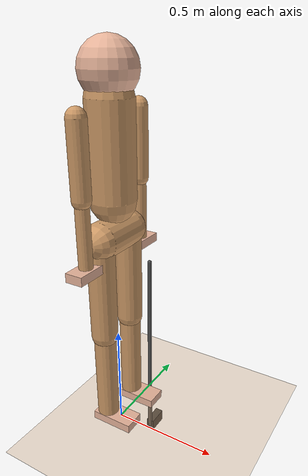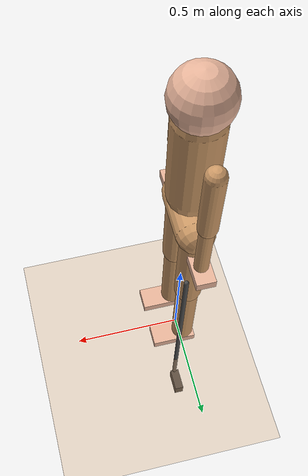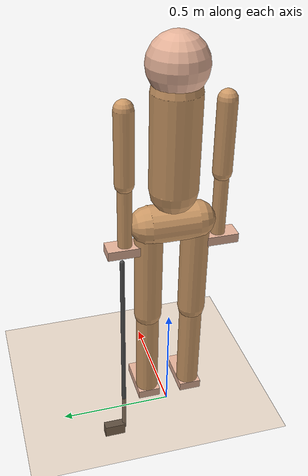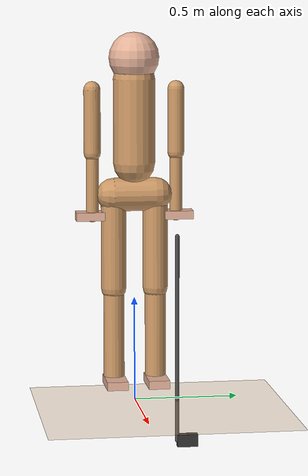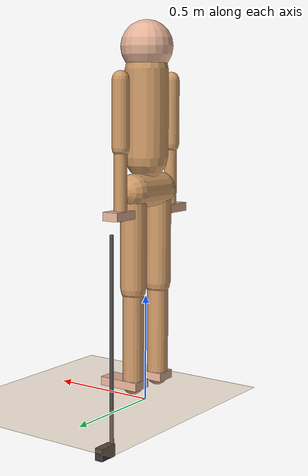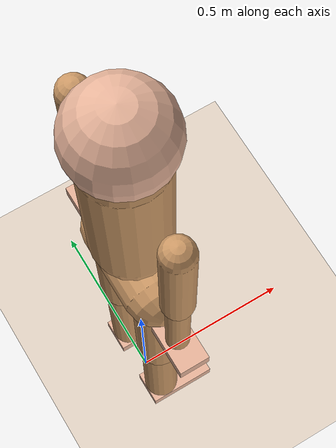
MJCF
<mujoco model="humanoid_golf">

  <compiler angle="degree" inertiafromgeom="true"/>

  <option timestep="0.005" iterations="50" solver="Newton" gravity="0 0 -9.81"/>

  <default>
    <joint damping="0.5" armature="0.01"/>
    <geom condim="3" friction="1.0 0.005 0.0001" rgba="0.8 0.6 0.4 1"/>
    <motor ctrllimited="true" ctrlrange="-1 1"/>
  </default>

  <asset>
    <texture name="grid" type="2d" builtin="checker" width="512" height="512" rgb1="0.2 0.3 0.2" rgb2="0.1 0.2 0.1"/>
    <material name="grid" texture="grid" texrepeat="4 4" texuniform="true" reflectance="0.2"/>
    <material name="floor_mat" rgba="0.3 0.5 0.3 1" reflectance="0.1"/>
  </asset>

  <worldbody>
    <!-- Ground plane -->
    <geom name="floor" type="plane" size="10 10 0.1" material="floor_mat"/>

    <light pos="0 0 3" dir="0 0 -1" diffuse="0.8 0.8 0.8" specular="0.2 0.2 0.2"/>

    <!-- Humanoid body -->
    <body name="pelvis" pos="0 0 1.0">
      <freejoint/>
      <geom name="pelvis_geom" type="capsule" fromto="0 -0.1 0 0 0.1 0" size="0.08"/>
      <inertial pos="0 0 0" mass="10" diaginertia="0.1 0.1 0.05"/>

      <!-- Torso -->
      <body name="torso" pos="0 0 0.15">
        <joint name="lumbar_rotation" type="hinge" axis="0 0 1" range="-45 45"/>
        <joint name="lumbar_flexion" type="hinge" axis="0 1 0" range="-30 60"/>
        <geom name="torso_geom" type="capsule" fromto="0 0 0 0 0 0.4" size="0.1"/>
        <inertial pos="0 0 0.2" mass="15" diaginertia="0.2 0.2 0.1"/>

        <!-- Head -->
        <body name="head" pos="0 0 0.5">
          <joint name="neck_flex" type="hinge" axis="0 1 0" range="-30 30"/>
          <geom name="head_geom" type="sphere" size="0.12" rgba="0.9 0.7 0.6 1"/>
          <inertial pos="0 0 0" mass="5" diaginertia="0.05 0.05 0.05"/>
        </body>

        <!-- Left shoulder and arm -->
        <body name="left_shoulder" pos="0 0.2 0.35">
          <joint name="left_shoulder_flex" type="hinge" axis="0 1 0" range="-60 180"/>
          <joint name="left_shoulder_abd" type="hinge" axis="1 0 0" range="0 180"/>
          <joint name="left_shoulder_rot" type="hinge" axis="0 0 1" range="-90 90"/>
          <geom name="left_upper_arm" type="capsule" fromto="0 0 0 0 0 -0.3" size="0.04"/>
          <inertial pos="0 0 -0.15" mass="3" diaginertia="0.02 0.02 0.01"/>

          <body name="left_elbow" pos="0 0 -0.3">
            <joint name="left_elbow_flex" type="hinge" axis="0 1 0" range="0 145"/>
            <geom name="left_forearm" type="capsule" fromto="0 0 0 0 0 -0.3" size="0.03"/>
            <inertial pos="0 0 -0.15" mass="2" diaginertia="0.015 0.015 0.01"/>

            <body name="left_wrist" pos="0 0 -0.3">
              <joint name="left_wrist_flex" type="hinge" axis="0 1 0" range="-70 80"/>
              <joint name="left_wrist_dev" type="hinge" axis="1 0 0" range="-25 25"/>
              <geom name="left_hand" type="box" size="0.04 0.08 0.02" rgba="0.9 0.7 0.6 1"/>
              <inertial pos="0 0 0" mass="0.5" diaginertia="0.005 0.005 0.002"/>

              <!-- Golf club attachment -->
              <body name="golf_club" pos="0.05 0 -0.1">
                <joint name="club_grip" type="ball" damping="0.5"/>

                <!-- Club shaft (no ground collision — penetrates floor in neutral stance) -->
                <geom name="club_shaft" type="capsule"
                      fromto="0 0 0 0 0 -1.0"
                      size="0.01"
                      mass="0.3"
                      rgba="0.3 0.3 0.3 1"
                      contype="0" conaffinity="0"/>

                <!-- Club head (driver, no ground collision) -->
                <body name="club_head_body" pos="0 0.05 -1.0">
                  <geom name="club_head" type="box"
                        size="0.02 0.05 0.03"
                        mass="0.2"
                        rgba="0.2 0.2 0.2 1"
                        contype="0" conaffinity="0"/>
                  <site name="club_head_site" pos="0 0 0" size="0.01"/>
                </body>
              </body>
            </body>
          </body>
        </body>

        <!-- Right shoulder and arm (simplified mirror) -->
        <body name="right_shoulder" pos="0 -0.2 0.35">
          <joint name="right_shoulder_flex" type="hinge" axis="0 1 0" range="-60 180"/>
          <joint name="right_shoulder_abd" type="hinge" axis="1 0 0" range="-180 0"/>
          <joint name="right_shoulder_rot" type="hinge" axis="0 0 1" range="-90 90"/>
          <geom name="right_upper_arm" type="capsule" fromto="0 0 0 0 0 -0.3" size="0.04"/>
          <inertial pos="0 0 -0.15" mass="3" diaginertia="0.02 0.02 0.01"/>

          <body name="right_elbow" pos="0 0 -0.3">
            <joint name="right_elbow_flex" type="hinge" axis="0 1 0" range="0 145"/>
            <geom name="right_forearm" type="capsule" fromto="0 0 0 0 0 -0.3" size="0.03"/>
            <inertial pos="0 0 -0.15" mass="2" diaginertia="0.015 0.015 0.01"/>

            <body name="right_wrist" pos="0 0 -0.3">
              <joint name="right_wrist_flex" type="hinge" axis="0 1 0" range="-70 80"/>
              <joint name="right_wrist_dev" type="hinge" axis="1 0 0" range="-25 25"/>
              <geom name="right_hand" type="box" size="0.04 0.08 0.02" rgba="0.9 0.7 0.6 1"/>
              <inertial pos="0 0 0" mass="0.5" diaginertia="0.005 0.005 0.002"/>
            </body>
          </body>
        </body>
      </body>

      <!-- Left leg -->
      <body name="left_hip" pos="0 0.1 0">
        <joint name="left_hip_flex" type="hinge" axis="0 1 0" range="-30 120"/>
        <joint name="left_hip_abd" type="hinge" axis="1 0 0" range="-45 45"/>
        <joint name="left_hip_rot" type="hinge" axis="0 0 1" range="-45 45"/>
        <geom name="left_thigh" type="capsule" fromto="0 0 0 0 0 -0.45" size="0.06"/>
        <inertial pos="0 0 -0.225" mass="8" diaginertia="0.08 0.08 0.02"/>

        <body name="left_knee" pos="0 0 -0.45">
          <joint name="left_knee_flex" type="hinge" axis="0 1 0" range="0 135"/>
          <geom name="left_shin" type="capsule" fromto="0 0 0 0 0 -0.45" size="0.05"/>
          <inertial pos="0 0 -0.225" mass="5" diaginertia="0.05 0.05 0.015"/>

          <body name="left_ankle" pos="0 0 -0.45">
            <joint name="left_ankle_flex" type="hinge" axis="0 1 0" range="-30 45"/>
            <geom name="left_foot_geom" type="box" size="0.1 0.05 0.02" pos="0.05 0 0" rgba="0.9 0.7 0.6 1"/>
            <site name="left_foot" pos="0.05 0 -0.02" size="0.01"/>
            <inertial pos="0.05 0 0" mass="1.5" diaginertia="0.01 0.01 0.005"/>
          </body>
        </body>
      </body>

      <!-- Right leg (mirror) -->
      <body name="right_hip" pos="0 -0.1 0">
        <joint name="right_hip_flex" type="hinge" axis="0 1 0" range="-30 120"/>
        <joint name="right_hip_abd" type="hinge" axis="1 0 0" range="-45 45"/>
        <joint name="right_hip_rot" type="hinge" axis="0 0 1" range="-45 45"/>
        <geom name="right_thigh" type="capsule" fromto="0 0 0 0 0 -0.45" size="0.06"/>
        <inertial pos="0 0 -0.225" mass="8" diaginertia="0.08 0.08 0.02"/>

        <body name="right_knee" pos="0 0 -0.45">
          <joint name="right_knee_flex" type="hinge" axis="0 1 0" range="0 135"/>
          <geom name="right_shin" type="capsule" fromto="0 0 0 0 0 -0.45" size="0.05"/>
          <inertial pos="0 0 -0.225" mass="5" diaginertia="0.05 0.05 0.015"/>

          <body name="right_ankle" pos="0 0 -0.45">
            <joint name="right_ankle_flex" type="hinge" axis="0 1 0" range="-30 45"/>
            <geom name="right_foot_geom" type="box" size="0.1 0.05 0.02" pos="0.05 0 0" rgba="0.9 0.7 0.6 1"/>
            <site name="right_foot" pos="0.05 0 -0.02" size="0.01"/>
            <inertial pos="0.05 0 0" mass="1.5" diaginertia="0.01 0.01 0.005"/>
          </body>
        </body>
      </body>
    </body>

    <!-- Mocap body for pelvis trajectory tracking (must match pelvis initial pos) -->
    <body name="mocap_pelvis" mocap="true" pos="0 0 1.0">
      <geom type="sphere" size="0.02" rgba="1 0 0 0.3" contype="0" conaffinity="0"/>
    </body>
  </worldbody>

  <!-- Equality constraints: weld pelvis to mocap body for balance -->
  <equality>
    <weld name="pelvis_track" body1="pelvis" body2="mocap_pelvis"
          solref="0.01 1" solimp="0.9 0.95 0.001"/>
  </equality>

  <!-- Actuators: torque-controlled motors -->
  <actuator>
    <!-- Spine -->
    <motor name="lumbar_rotation_motor" joint="lumbar_rotation" gear="150"/>
    <motor name="lumbar_flexion_motor" joint="lumbar_flexion" gear="120"/>

    <!-- Left arm -->
    <motor name="left_shoulder_flex_motor" joint="left_shoulder_flex" gear="100"/>
    <motor name="left_shoulder_abd_motor" joint="left_shoulder_abd" gear="100"/>
    <motor name="left_shoulder_rot_motor" joint="left_shoulder_rot" gear="80"/>
    <motor name="left_elbow_flex_motor" joint="left_elbow_flex" gear="80"/>
    <motor name="left_wrist_flex_motor" joint="left_wrist_flex" gear="50"/>
    <motor name="left_wrist_dev_motor" joint="left_wrist_dev" gear="40"/>

    <!-- Right arm -->
    <motor name="right_shoulder_flex_motor" joint="right_shoulder_flex" gear="100"/>
    <motor name="right_shoulder_abd_motor" joint="right_shoulder_abd" gear="100"/>
    <motor name="right_shoulder_rot_motor" joint="right_shoulder_rot" gear="80"/>
    <motor name="right_elbow_flex_motor" joint="right_elbow_flex" gear="80"/>
    <motor name="right_wrist_flex_motor" joint="right_wrist_flex" gear="50"/>
    <motor name="right_wrist_dev_motor" joint="right_wrist_dev" gear="40"/>

    <!-- Left leg -->
    <motor name="left_hip_flex_motor" joint="left_hip_flex" gear="150"/>
    <motor name="left_hip_abd_motor" joint="left_hip_abd" gear="120"/>
    <motor name="left_hip_rot_motor" joint="left_hip_rot" gear="150"/>
    <motor name="left_knee_flex_motor" joint="left_knee_flex" gear="100"/>
    <motor name="left_ankle_flex_motor" joint="left_ankle_flex" gear="60"/>

    <!-- Right leg -->
    <motor name="right_hip_flex_motor" joint="right_hip_flex" gear="150"/>
    <motor name="right_hip_abd_motor" joint="right_hip_abd" gear="120"/>
    <motor name="right_hip_rot_motor" joint="right_hip_rot" gear="150"/>
    <motor name="right_knee_flex_motor" joint="right_knee_flex" gear="100"/>
    <motor name="right_ankle_flex_motor" joint="right_ankle_flex" gear="60"/>

    <!-- Neck -->
    <motor name="neck_flex_motor" joint="neck_flex" gear="30"/>
  </actuator>

  <!-- Sensors for physics analysis -->
  <sensor>
    <!-- Joint position sensors -->
    <jointpos name="lumbar_rotation_pos" joint="lumbar_rotation"/>
    <jointpos name="left_hip_rot_pos" joint="left_hip_rot"/>

    <!-- Joint velocity sensors -->
    <jointvel name="lumbar_rotation_vel" joint="lumbar_rotation"/>

    <!-- Contact force sensors -->
    <touch name="left_foot_contact" site="left_foot"/>
    <touch name="right_foot_contact" site="right_foot"/>

    <!-- Club head speed -->
    <framelinvel name="club_head_vel" objtype="site" objname="club_head_site"/>
  </sensor>

</mujoco>
